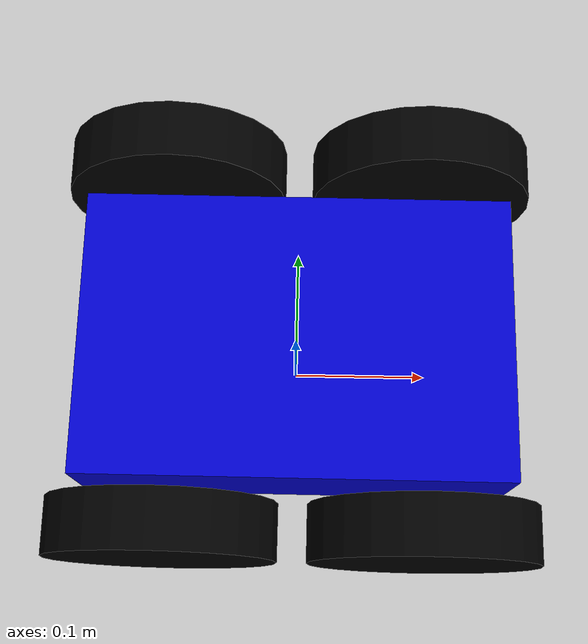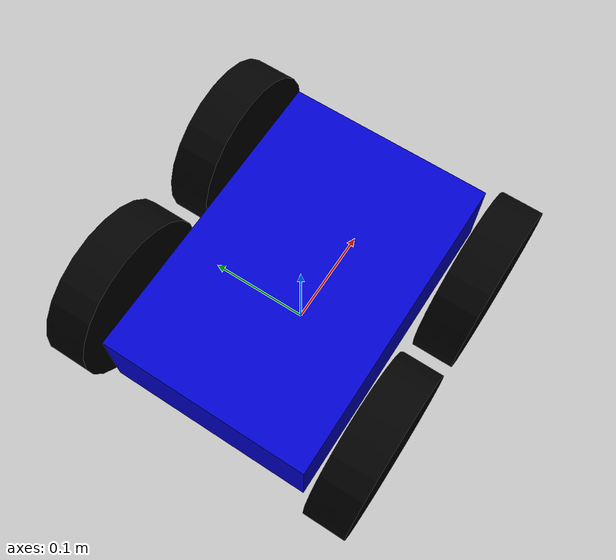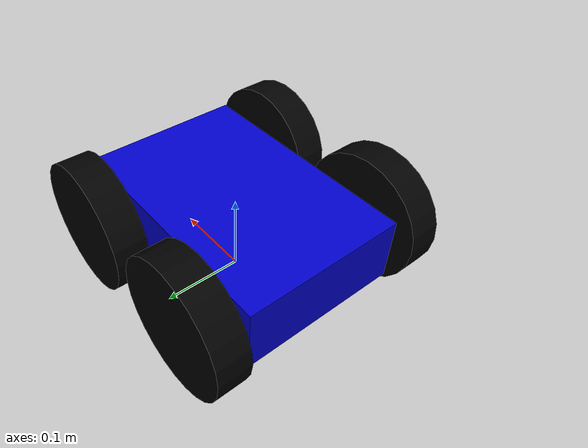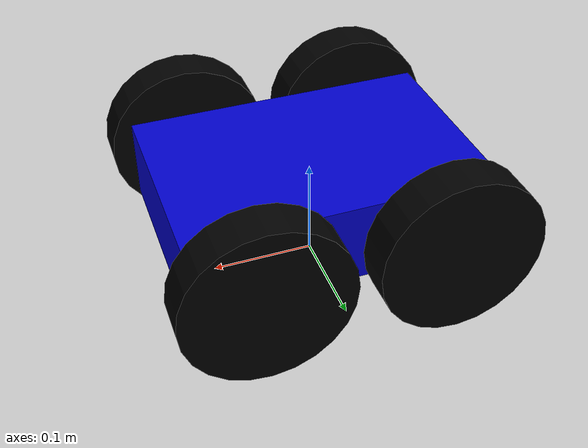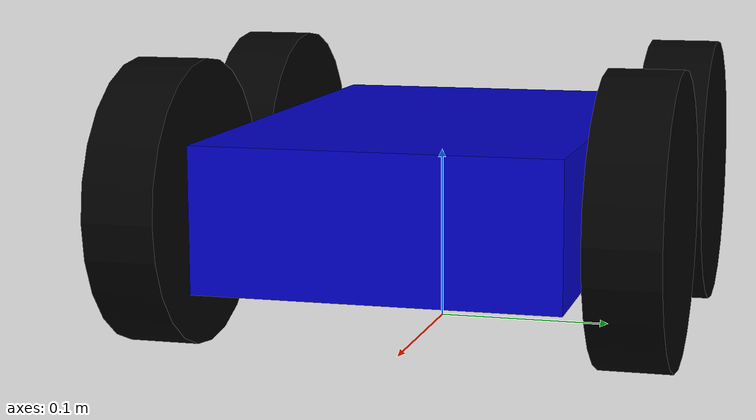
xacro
<?xml version="1.0"?>
<robot name="armbot" xmlns:xacro="http://wiki.ros.org/xacro">
  <!-- Geometry and proportions match the armbot used by the recovered VM project. -->
  <xacro:property name="PI" value="3.141592653589793"/>
  <xacro:property name="base_link_length" value="0.30"/>
  <xacro:property name="base_link_width" value="0.20"/>
  <xacro:property name="base_link_height" value="0.08"/>
  <xacro:property name="base_link_m" value="0.50"/>
  <xacro:property name="wheel_radius" value="0.08"/>
  <xacro:property name="wheel_length" value="0.04"/>
  <xacro:property name="wheel_m" value="0.10"/>
  <xacro:property name="wheel_x" value="${base_link_length * 0.30}"/>
  <xacro:property name="wheel_y" value="${(base_link_width / 2 + wheel_length / 2) * 1.10}"/>

  <material name="armbot_blue">
    <color rgba="0 0 0.8 1"/>
  </material>
  <material name="armbot_black">
    <color rgba="0 0 0 1"/>
  </material>
  <material name="black">
    <color rgba="0 0 0 1"/>
  </material>

  <link name="base_footprint"/>

  <link name="base_link">
    <visual>
      <geometry>
        <box size="${base_link_length} ${base_link_width} ${base_link_height}"/>
      </geometry>
      <material name="armbot_blue"/>
    </visual>
    <collision>
      <geometry>
        <box size="${base_link_length} ${base_link_width} ${base_link_height}"/>
      </geometry>
    </collision>
    <xacro:Box_inertial_matrix m="${base_link_m}" l="${base_link_length}" w="${base_link_width}" h="${base_link_height}"/>
  </link>

  <joint name="base_link2base_footprint" type="fixed">
    <parent link="base_footprint"/>
    <child link="base_link"/>
    <origin xyz="0 0 ${wheel_radius}"/>
  </joint>

  <gazebo reference="base_link">
    <material>Gazebo/Blue</material>
  </gazebo>

  <xacro:macro name="armbot_wheel" params="name x_pos y_pos">
    <link name="${name}_wheel">
      <visual>
        <origin xyz="0 0 0" rpy="${PI / 2} 0 0"/>
        <geometry>
          <cylinder radius="${wheel_radius}" length="${wheel_length}"/>
        </geometry>
        <material name="armbot_black"/>
      </visual>
      <collision>
        <origin xyz="0 0 0" rpy="${PI / 2} 0 0"/>
        <geometry>
          <cylinder radius="${wheel_radius}" length="${wheel_length}"/>
        </geometry>
      </collision>
      <xacro:cylinder_inertial_matrix m="${wheel_m}" r="${wheel_radius}" h="${wheel_length}"/>
    </link>
    <joint name="${name}_wheel_joint" type="continuous">
      <parent link="base_link"/>
      <child link="${name}_wheel"/>
      <origin xyz="${x_pos} ${y_pos} 0" rpy="0 0 0"/>
      <axis xyz="0 1 0"/>
      <dynamics damping="0.0" friction="0.0"/>
    </joint>
    <gazebo reference="${name}_wheel">
      <material>Gazebo/DarkGrey</material>
      <mu1>1.0</mu1>
      <mu2>1.0</mu2>
      <kp>1000000.0</kp>
      <kd>1.0</kd>
    </gazebo>
  </xacro:macro>

  <xacro:armbot_wheel name="front_left" x_pos="${wheel_x}" y_pos="${wheel_y}"/>
  <xacro:armbot_wheel name="front_right" x_pos="${wheel_x}" y_pos="${-wheel_y}"/>
  <xacro:armbot_wheel name="back_left" x_pos="${-wheel_x}" y_pos="${wheel_y}"/>
  <xacro:armbot_wheel name="back_right" x_pos="${-wheel_x}" y_pos="${-wheel_y}"/>
</robot>
